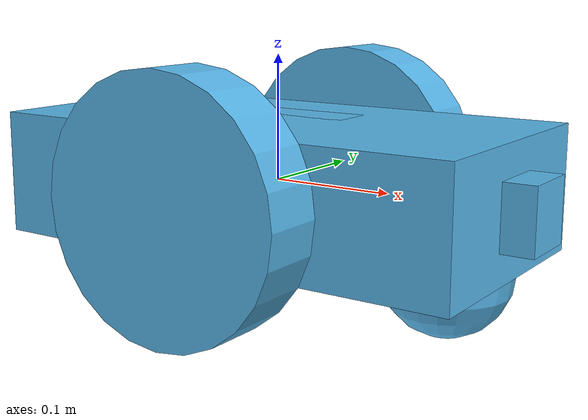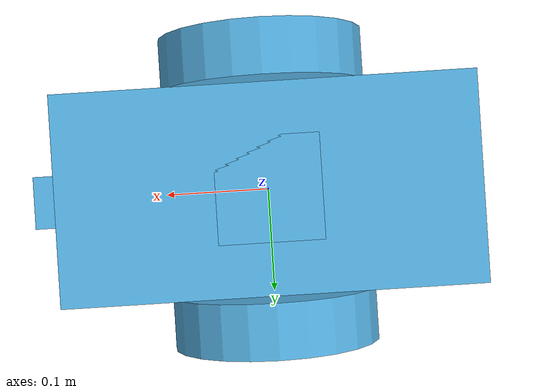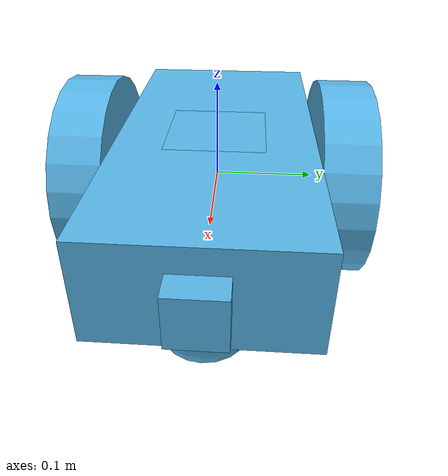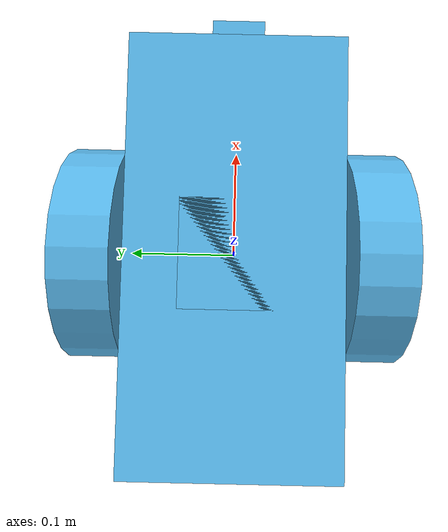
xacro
<?xml version='1.0'?>

<robot name="my_robot" xmlns:xacro="http://www.ros.org/wiki/xacro">

  <link name="robot_footprint"></link>

  <joint name="robot_footprint_joint" type="fixed">
    <origin xyz="0 0 0" rpy="0 0 0" />
    <parent link="robot_footprint"/>
    <child link="chassis" />
  </joint>

  <link name='chassis'>

  <!--  left wheel joint -->
  <joint type="continuous" name="left_wheel_hinge">
    <origin xyz="0 0.15 0" rpy="0 0 0"/>
    <child link="left_wheel"/>
    <parent link="chassis"/>
    <axis xyz="0 0.125 0" rpy="0 0 0"/>
    <limit effort="10000" velocity="1000"/>
    <dynamics damping="1.0" friction="1.0"/>
  </joint>

  <!--  right wheel joint -->
   <joint type="continuous" name="right_wheel_hinge">
    <origin xyz="0 -0.125 0" rpy="0 0 0"/>
    <child link="right_wheel"/>
    <parent link="chassis"/>
    <axis xyz="0 1 0" rpy="0 0 0"/>
    <limit effort="10000" velocity="1000"/>
    <dynamics damping="1.0" friction="1.0"/>
  </joint>

  <!--  camera joint -->
  <joint type="fixed" name="camera_joint">
    <origin xyz="0.2 0 0" rpy="0 0 0"/>
    <child link="camera"/>
    <parent link="chassis"/>
  </joint>

  <!--  hokuyo joint -->
   <joint type="fixed" name="camera_joint">
    <origin xyz="0.15 0 0.1" rpy="0 0 0"/>
    <child link="hokuyo"/>
    <parent link="chassis"/>
  </joint>

    <pose>0 0 0.1 0 0 0</pose>

    <inertial>
      <mass value="15.0"/>
      <origin xyz="0.0 0 0" rpy=" 0 0 0"/>
      <inertia
          ixx="0.1" ixy="0" ixz="0"
          iyy="0.1" iyz="0"
          izz="0.1"
      />
    </inertial>

    <collision name='collision'>
      <origin xyz="0 0 0" rpy=" 0 0 0"/>
      <geometry>
        <box size=".4 .2 .1"/>
      </geometry>
    </collision>

    <visual name='chassis_visual'>
      <origin xyz="0 0 0" rpy=" 0 0 0"/>
      <geometry>
        <box size=".4 .2 .1"/>
      </geometry>
    </visual>

    <collision name='back_caster_collision'>
      <origin xyz="-0.15 0 -0.05" rpy=" 0 0 0"/>
      <geometry>
        <sphere radius="0.0499"/>
      </geometry>
    </collision>

    <visual name='back_caster_visual'>
      <origin xyz="-0.15 0 -0.05" rpy=" 0 0 0"/>
      <geometry>
        <sphere radius="0.05"/>
      </geometry>
    </visual>

    <collision name='front_caster_collision'>
      <origin xyz="0.15 0 -0.05" rpy=" 0 0 0"/>
      <geometry>
        <sphere radius="0.0499"/>
      </geometry>
    </collision>

    <visual name='front_caster_visual'>
      <origin xyz="0.15 0 -0.05" rpy=" 0 0 0"/>
      <geometry>
        <sphere radius="0.05"/>
      </geometry>
    </visual>

      <!--  right wheel -->
    <collision name='right_wheel'>
     <origin xyz="0 -0.125 0" rpy= "0 1.5707 1.5707"/>
      <geometry>
        <cylinder radius="0.1" length="0.05"/>
      </geometry>
    </collision>

    <visual name="right_wheel">
		<origin xyz="0 -0.125 0" rpy= "0 1.5707 1.5707"/>
    		<geometry>
    			<cylinder radius="0.1" length="0.05"/>
   			 </geometry>
	</visual>

     <inertia name ="right_wheel">

        <mass>"5"</mass>
        <inertia>
        	<ixx>"0.1"</ixx>
            <ixy>"0"</ixy>
            <ixz>"0"</ixz>
            <iyy>"0.1"</iyy>
            <iyz>"0"</iyz>
            <izz>"0.1"</izz>
        </inertia>
    </inertia>

    <!--  left wheel -->

    <collision name='left_wheel'>
     <origin xyz="0 0.125 0" rpy= "0 1.5707 1.5707"/>
      <geometry>
        <cylinder radius="0.1" length="0.05"/>

      </geometry>
    </collision>

    <visual name="left_wheel">
		<origin xyz="0 0.125 0" rpy= "0 1.5707 1.5707"/>
    		<geometry>
    			<cylinder radius="0.1" length="0.05"/>

   			 </geometry>

	</visual>

     <inertia name ="left_wheel">

        <mass>"5"</mass>
        <inertia>
        	<ixx>"0.1"</ixx>
            <ixy>"0"</ixy>
            <ixz>"0"</ixz>
            <iyy>"0.1"</iyy>
            <iyz>"0"</iyz>
            <izz>"0.1"</izz>
        </inertia>
    </inertia>

      <!--  camera -->
    <collision name='camera'>
     <origin xyz="0 0.125 0" rpy= "0 1.5707 1.5707"/>
      <geometry>
        <box size="0.05 0.05 0.05"/>
      </geometry>
    </collision>

    <visual name="camera">
		<origin xyz="0.2 0 0" rpy= "0 0 0"/>
    		<geometry>
    			<box size="0.05 0.05 0.05"/>
   			 </geometry>
	</visual>

    <inertia name ="camera">

        <mass>"0.1"</mass>
        <inertia>
        	<ixx>"1e-6"</ixx>
            <ixy>"0"</ixy>
            <ixz>"0"</ixz>
            <iyy>"1e-6"</iyy>
            <iyz>"0"</iyz>
            <izz>"1e-6"</izz>
        </inertia>
    </inertia>

    <!-- Hokuyo -->

    <collision name='hokuyo'>
     <origin xyz="0 0 0" rpy= "0 0 0"/>
      <geometry>
        <box size="0.1 0.1 0.1"/>
      </geometry>
    </collision>

    <visual name="hokuyo">
		<origin xyz="0 0 0" rpy= "0 0 0"/>
    		<geometry>
    			<box size="0.1 0.1 0.1"/>
   			 </geometry>
	</visual>

    <inertia name="hokuyo">
        <mass>"1e-5"</mass>
        <inertia>
            <ixx>"1e-6"</ixx>
            <ixy>"0"</ixy>
            <ixz>"0"</ixz>
            <iyy>"1e-6"</iyy>
            <iyz>"0"</iyz>
            <izz>"1e-6"</izz>
        </inertia>
    </inertia>

  </link>

</robot>
